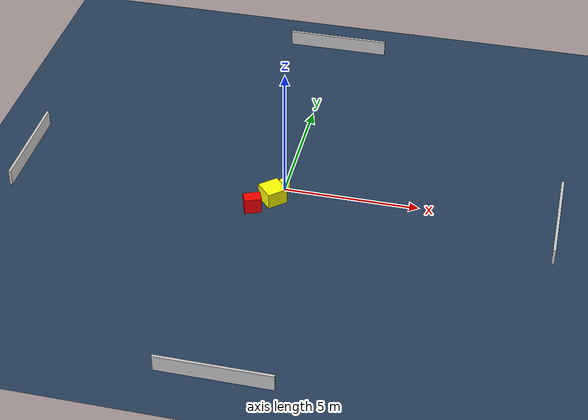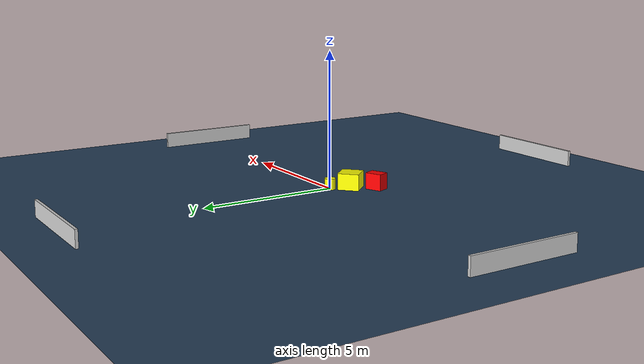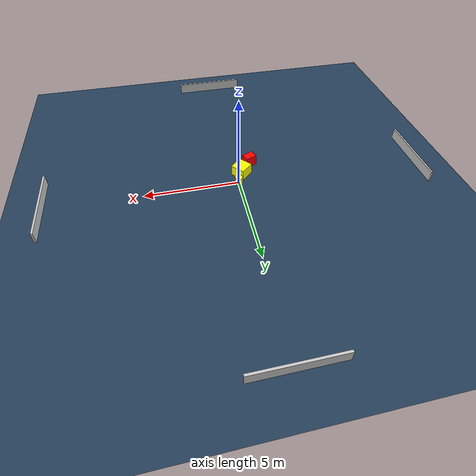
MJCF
<?xml version="1.0" ?>
<mujoco model="generated_environment">
  <option timestep="0.01" integrator="RK4" cone="elliptic"/>
  <default>
    <geom density="1"/>
  </default>
  <asset>
    <texture builtin="gradient" height="3072" name="skybox" rgb1="0.3 0.5 0.7" rgb2="0 0 0" type="skybox" width="512"/>
    <texture builtin="checker" height="300" name="groundplane" rgb1="0.2 0.3 0.4" rgb2="0.1 0.2 0.3" type="2d" width="300"/>
    <material name="groundplane" reflectance="0.2" texrepeat="5 5" texture="groundplane"/>
  </asset>
  <worldbody>
    <light dir="0 0 -1" directional="true" pos="0 0 1.5"/>
    <geom condim="3" friction="0.5 0.005 0.001" material="groundplane" name="floor" pos="0 0 0" size="0 0 0.05" type="plane"/>
    <body name="walls">
      <geom name="wall_1" condim="4" pos="-10.0 0.0 0.3" rgba="0.800000011920929 0.800000011920929 0.800000011920929 1.0" size="0.05 2.0 0.3" type="box"/>
      <geom name="wall_2" condim="4" pos="10.0 0.0 0.3" rgba="0.800000011920929 0.800000011920929 0.800000011920929 1.0" size="0.05 2.0 0.3" type="box"/>
      <geom name="wall_3" condim="4" pos="0.0 -10.0 0.3" rgba="0.800000011920929 0.800000011920929 0.800000011920929 1.0" size="2.0 0.05 0.3" type="box"/>
      <geom name="wall_4" condim="4" pos="0.0 10.0 0.3" rgba="0.800000011920929 0.800000011920929 0.800000011920929 1.0" size="2.0 0.05 0.3" type="box"/>
    </body>
    <body name="robot">
      <joint name="joint_x" type="slide" pos="0 0 0" axis="1 0 0"/>
      <joint name="joint_y" type="slide" pos="0 0 0" axis="0 1 0"/>
      <geom name="robot" type="cylinder" pos="0.0 0.0 0.2" size="0.2 0.2 0.0" mass="5.0" friction="1.0 0.005 0.0001" condim="4" rgba="1.0 1.0 0.0 1.0"/>
    </body>
    <body name="obstacle_1_movable">
      <geom name="obstacle_1_movable" condim="4" pos="-0.2934107598062743 -0.6973553548275978 0.3" euler="0 0 42.07011246781717" friction="0.0 0.005 0.001" rgba="1.0 1.0 0.0 1.0" size="0.3900335699060066 0.3888846919990743 0.3" type="box" mass="0.1"/>
      <joint type="free"/>
    </body>
    <body name="obstacle_2_static">
      <geom name="obstacle_2_static" condim="4" pos="-0.8869794367861661 -1.4151985205065527 0.3" euler="0 0 292.28740520759874" friction="0.0 0.005 0.001" rgba="1.0 0.0 0.0 1.0" size="0.22575876516118765 0.3127853819250821 0.3" type="box"/>
    </body>
  </worldbody>
  <actuator>
    <motor name="actuator_x" joint="joint_x" gear="1" ctrlrange="-1 1"/>
    <motor name="actuator_y" joint="joint_y" gear="1" ctrlrange="-1 1"/>
  </actuator>
</mujoco>
